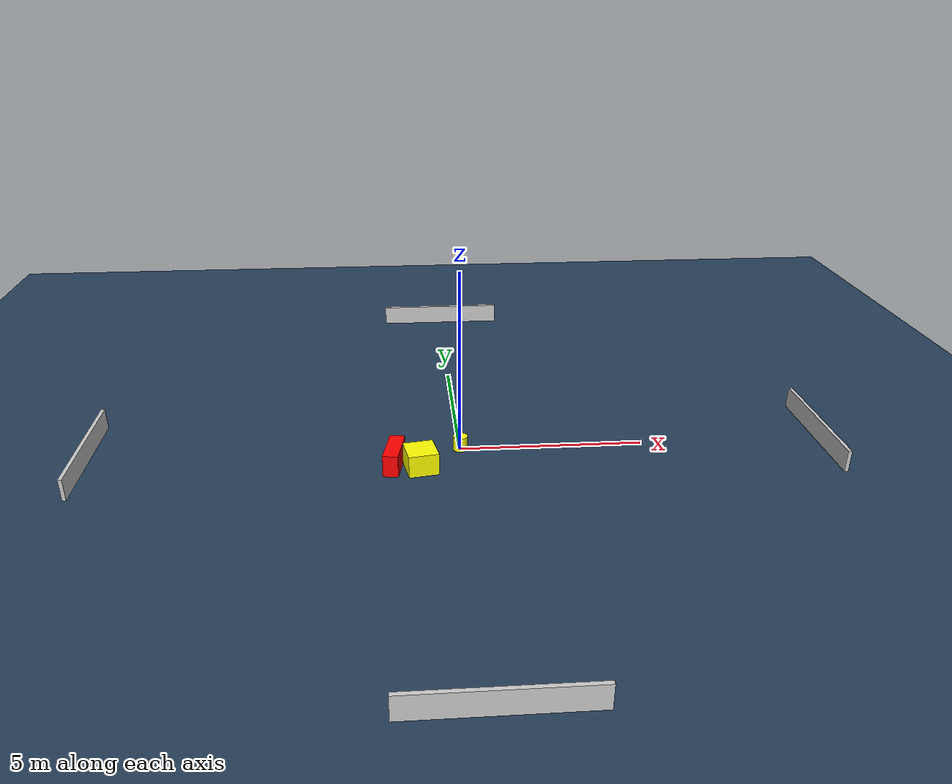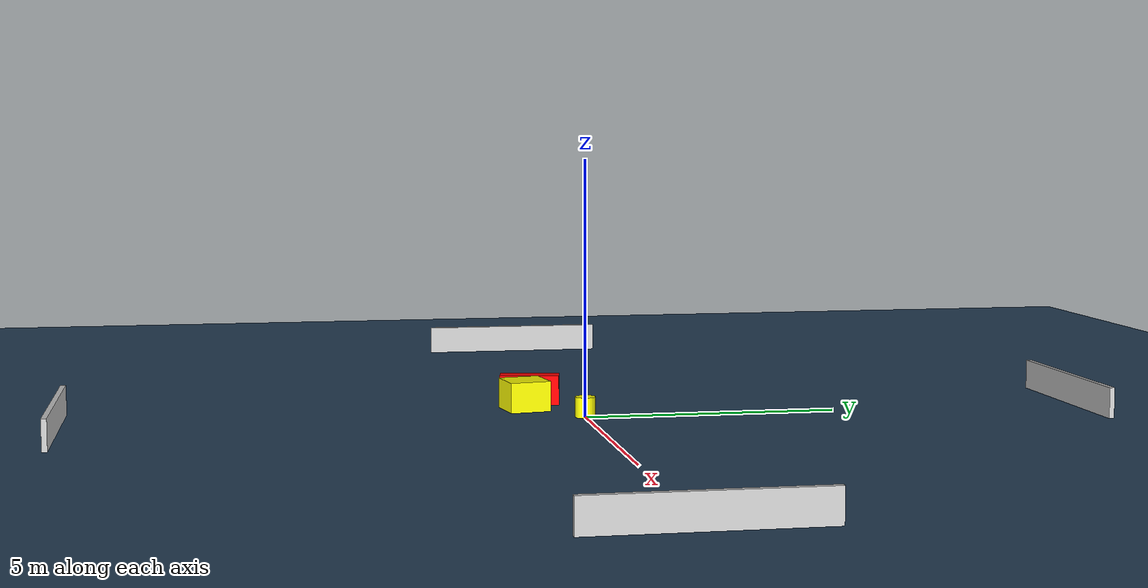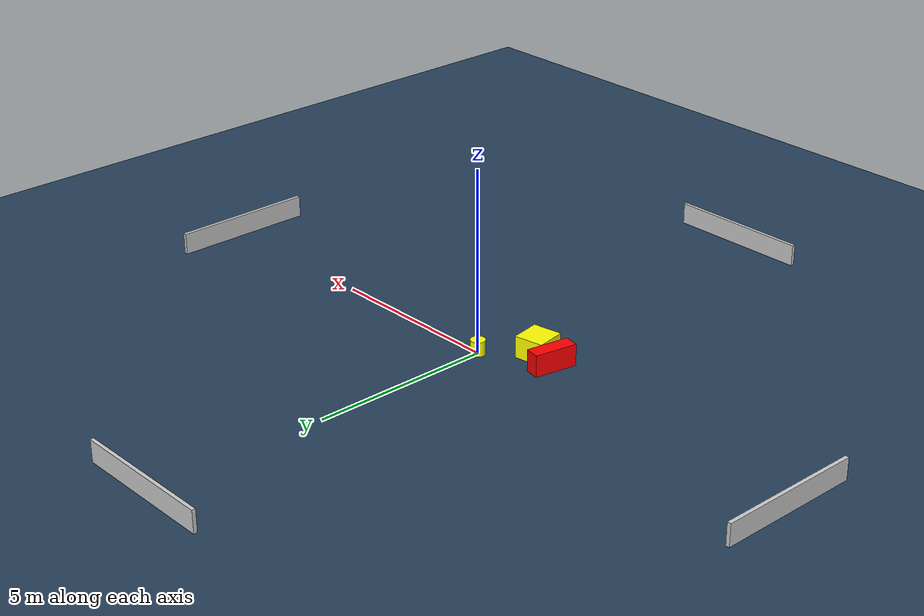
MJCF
<?xml version="1.0" ?>
<mujoco model="generated_environment">
  <option timestep="0.01" integrator="RK4" cone="elliptic"/>
  <default>
    <geom density="1"/>
  </default>
  <asset>
    <texture builtin="gradient" height="3072" name="skybox" rgb1="0.3 0.5 0.7" rgb2="0 0 0" type="skybox" width="512"/>
    <texture builtin="checker" height="300" name="groundplane" rgb1="0.2 0.3 0.4" rgb2="0.1 0.2 0.3" type="2d" width="300"/>
    <material name="groundplane" reflectance="0.2" texrepeat="5 5" texture="groundplane"/>
  </asset>
  <worldbody>
    <light dir="0 0 -1" directional="true" pos="0 0 1.5"/>
    <geom condim="3" friction="0.5 0.005 0.001" material="groundplane" name="floor" pos="0 0 0" size="0 0 0.05" type="plane"/>
    <body name="walls">
      <geom name="wall_1" condim="4" pos="-10.0 0.0 0.3" rgba="0.800000011920929 0.800000011920929 0.800000011920929 1.0" size="0.05 2.0 0.3" type="box"/>
      <geom name="wall_2" condim="4" pos="10.0 0.0 0.3" rgba="0.800000011920929 0.800000011920929 0.800000011920929 1.0" size="0.05 2.0 0.3" type="box"/>
      <geom name="wall_3" condim="4" pos="0.0 -10.0 0.3" rgba="0.800000011920929 0.800000011920929 0.800000011920929 1.0" size="2.0 0.05 0.3" type="box"/>
      <geom name="wall_4" condim="4" pos="0.0 10.0 0.3" rgba="0.800000011920929 0.800000011920929 0.800000011920929 1.0" size="2.0 0.05 0.3" type="box"/>
    </body>
    <body name="robot">
      <joint name="joint_x" type="slide" pos="0 0 0" axis="1 0 0"/>
      <joint name="joint_y" type="slide" pos="0 0 0" axis="0 1 0"/>
      <geom name="robot" type="cylinder" pos="0.0 0.0 0.2" size="0.2 0.2 0.0" mass="5.0" friction="1.0 0.005 0.0001" condim="4" rgba="1.0 1.0 0.0 1.0"/>
    </body>
    <body name="obstacle_1_movable">
      <geom name="obstacle_1_movable" condim="4" pos="-1.1089941968492554 -1.027036134576441 0.3" euler="0 0 99.8715548435766" friction="0.0 0.005 0.001" rgba="1.0 1.0 0.0 1.0" size="0.41228917901442885 0.4043946749666959 0.3" type="box" mass="0.1"/>
      <joint type="free"/>
    </body>
    <body name="obstacle_2_static">
      <geom name="obstacle_2_static" condim="4" pos="-1.8095700521551739 -0.8240350632716626 0.3" euler="0 0 259.90254533169804" friction="0.0 0.005 0.001" rgba="1.0 0.0 0.0 1.0" size="0.5963762362145606 0.20325657789288798 0.3" type="box"/>
    </body>
  </worldbody>
  <actuator>
    <motor name="actuator_x" joint="joint_x" gear="1" ctrlrange="-1 1"/>
    <motor name="actuator_y" joint="joint_y" gear="1" ctrlrange="-1 1"/>
  </actuator>
</mujoco>
